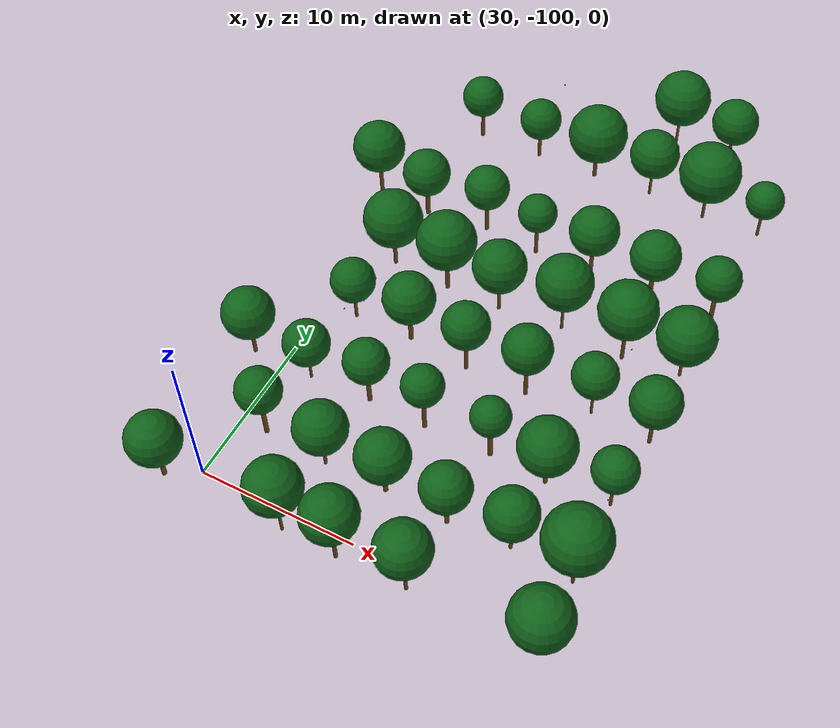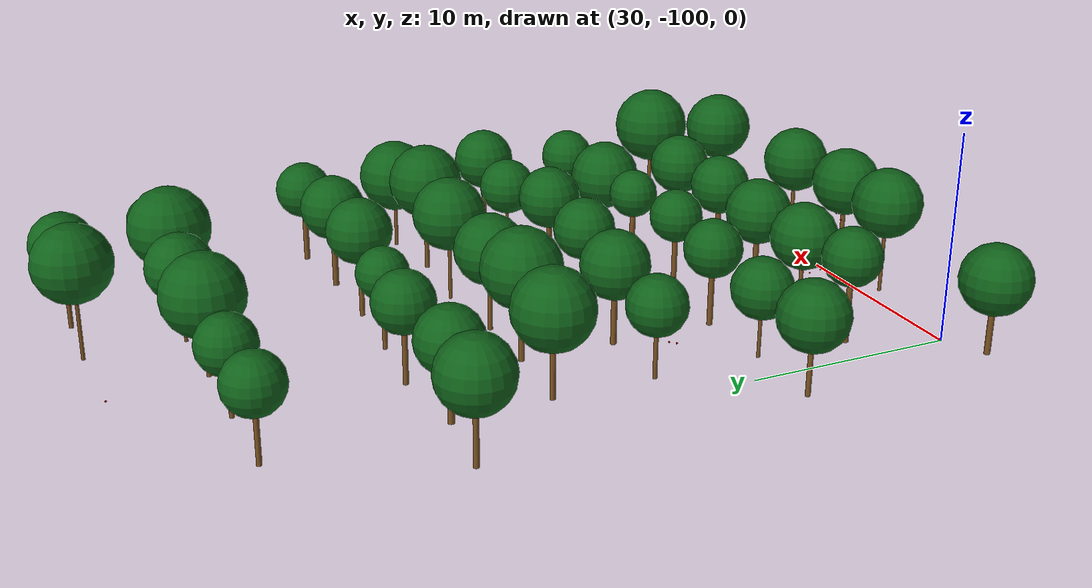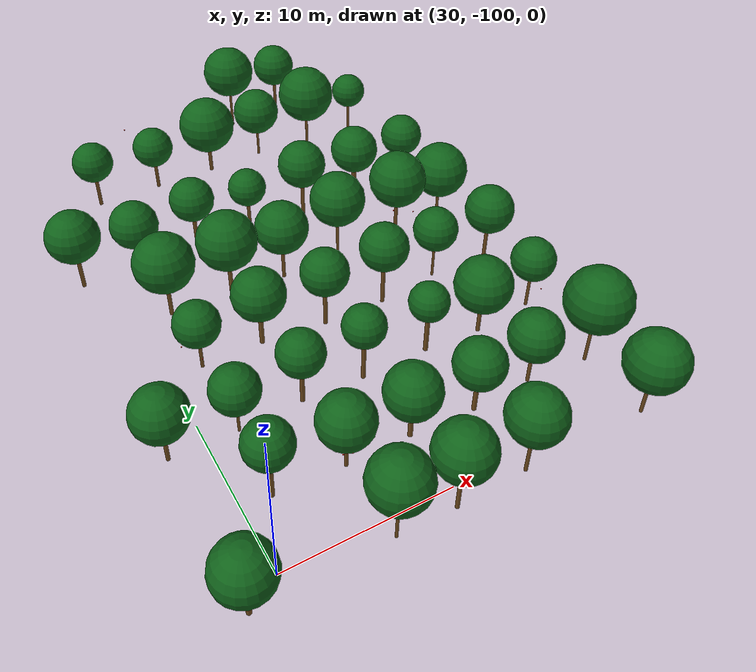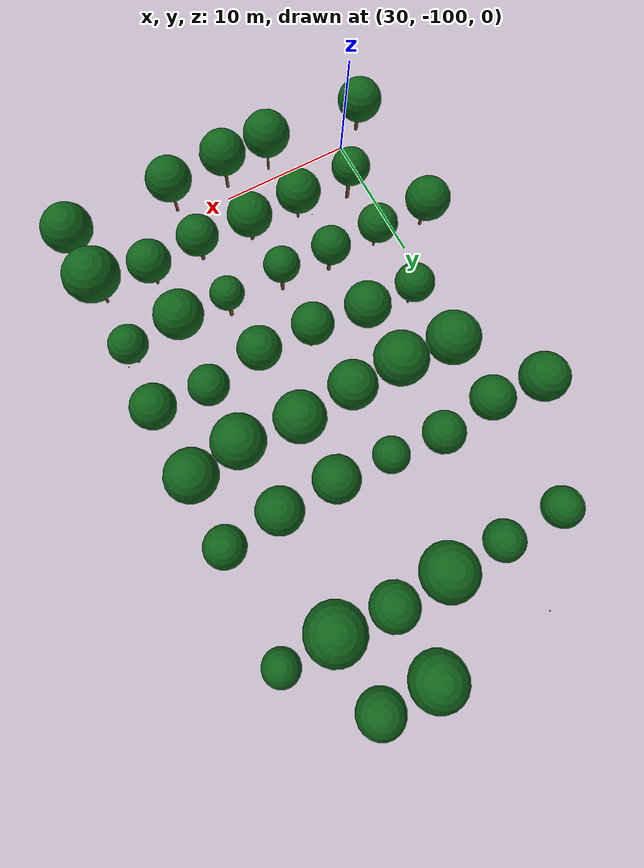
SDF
<sdf version="1.9">
 <world name="cheongsong_orchard">
  <model name="apple_tree_187">
   <static>true</static>
   <pose>28.08 -101.05 0 0 0 0</pose>
   <link name="link">
    <collision name="trunk_col">
     <pose>0 0 0.99 0 0 0</pose>
     <geometry><cylinder><radius>0.144</radius><length>1.99</length></cylinder></geometry>
    </collision>
    <visual name="trunk_vis">
     <pose>0 0 0.99 0 0 0</pose>
     <geometry><cylinder><radius>0.144</radius><length>1.99</length></cylinder></geometry>
     <material><ambient>0.35 0.22 0.08 1</ambient><diffuse>0.45 0.30 0.12 1</diffuse></material>
    </visual>
    <collision name="canopy_col">
     <pose>0 0 3.65 0 0 0</pose>
     <geometry><sphere><radius>1.66</radius></sphere></geometry>
    </collision>
    <visual name="canopy_vis">
     <pose>0 0 3.65 0 0 0</pose>
     <geometry><sphere><radius>1.66</radius></sphere></geometry>
     <material><ambient>0.04 0.28 0.06 1</ambient><diffuse>0.06 0.38 0.10 1</diffuse></material>
    </visual>
   </link>
  </model>
  <model name="apple_tree_189">
   <static>true</static>
   <pose>36.00 -100.99 0 0 0 0</pose>
   <link name="link">
    <collision name="trunk_col">
     <pose>0 0 1.45 0 0 0</pose>
     <geometry><cylinder><radius>0.086</radius><length>2.91</length></cylinder></geometry>
    </collision>
    <visual name="trunk_vis">
     <pose>0 0 1.45 0 0 0</pose>
     <geometry><cylinder><radius>0.086</radius><length>2.91</length></cylinder></geometry>
     <material><ambient>0.35 0.22 0.08 1</ambient><diffuse>0.45 0.30 0.12 1</diffuse></material>
    </visual>
    <collision name="canopy_col">
     <pose>0 0 4.62 0 0 0</pose>
     <geometry><sphere><radius>1.72</radius></sphere></geometry>
    </collision>
    <visual name="canopy_vis">
     <pose>0 0 4.62 0 0 0</pose>
     <geometry><sphere><radius>1.72</radius></sphere></geometry>
     <material><ambient>0.04 0.28 0.06 1</ambient><diffuse>0.06 0.38 0.10 1</diffuse></material>
    </visual>
   </link>
  </model>
  <model name="apple_tree_190">
   <static>true</static>
   <pose>39.53 -101.06 0 0 0 0</pose>
   <link name="link">
    <collision name="trunk_col">
     <pose>0 0 1.46 0 0 0</pose>
     <geometry><cylinder><radius>0.117</radius><length>2.92</length></cylinder></geometry>
    </collision>
    <visual name="trunk_vis">
     <pose>0 0 1.46 0 0 0</pose>
     <geometry><cylinder><radius>0.117</radius><length>2.92</length></cylinder></geometry>
     <material><ambient>0.35 0.22 0.08 1</ambient><diffuse>0.45 0.30 0.12 1</diffuse></material>
    </visual>
    <collision name="canopy_col">
     <pose>0 0 4.60 0 0 0</pose>
     <geometry><sphere><radius>1.69</radius></sphere></geometry>
    </collision>
    <visual name="canopy_vis">
     <pose>0 0 4.60 0 0 0</pose>
     <geometry><sphere><radius>1.69</radius></sphere></geometry>
     <material><ambient>0.04 0.28 0.06 1</ambient><diffuse>0.06 0.38 0.10 1</diffuse></material>
    </visual>
   </link>
  </model>
  <model name="apple_tree_191">
   <static>true</static>
   <pose>43.90 -100.95 0 0 0 0</pose>
   <link name="link">
    <collision name="trunk_col">
     <pose>0 0 1.40 0 0 0</pose>
     <geometry><cylinder><radius>0.103</radius><length>2.80</length></cylinder></geometry>
    </collision>
    <visual name="trunk_vis">
     <pose>0 0 1.40 0 0 0</pose>
     <geometry><cylinder><radius>0.103</radius><length>2.80</length></cylinder></geometry>
     <material><ambient>0.35 0.22 0.08 1</ambient><diffuse>0.45 0.30 0.12 1</diffuse></material>
    </visual>
    <collision name="canopy_col">
     <pose>0 0 4.47 0 0 0</pose>
     <geometry><sphere><radius>1.67</radius></sphere></geometry>
    </collision>
    <visual name="canopy_vis">
     <pose>0 0 4.47 0 0 0</pose>
     <geometry><sphere><radius>1.67</radius></sphere></geometry>
     <material><ambient>0.04 0.28 0.06 1</ambient><diffuse>0.06 0.38 0.10 1</diffuse></material>
    </visual>
   </link>
  </model>
  <model name="apple_tree_193">
   <static>true</static>
   <pose>51.87 -100.93 0 0 0 0</pose>
   <link name="link">
    <collision name="trunk_col">
     <pose>0 0 1.13 0 0 0</pose>
     <geometry><cylinder><radius>0.106</radius><length>2.25</length></cylinder></geometry>
    </collision>
    <visual name="trunk_vis">
     <pose>0 0 1.13 0 0 0</pose>
     <geometry><cylinder><radius>0.106</radius><length>2.25</length></cylinder></geometry>
     <material><ambient>0.35 0.22 0.08 1</ambient><diffuse>0.45 0.30 0.12 1</diffuse></material>
    </visual>
    <collision name="canopy_col">
     <pose>0 0 4.09 0 0 0</pose>
     <geometry><sphere><radius>1.83</radius></sphere></geometry>
    </collision>
    <visual name="canopy_vis">
     <pose>0 0 4.09 0 0 0</pose>
     <geometry><sphere><radius>1.83</radius></sphere></geometry>
     <material><ambient>0.04 0.28 0.06 1</ambient><diffuse>0.06 0.38 0.10 1</diffuse></material>
    </visual>
   </link>
  </model>
  <model name="apple_tree_239">
   <static>true</static>
   <pose>31.72 -95.92 0 0 0 0</pose>
   <link name="link">
    <collision name="trunk_col">
     <pose>0 0 1.41 0 0 0</pose>
     <geometry><cylinder><radius>0.139</radius><length>2.82</length></cylinder></geometry>
    </collision>
    <visual name="trunk_vis">
     <pose>0 0 1.41 0 0 0</pose>
     <geometry><cylinder><radius>0.139</radius><length>2.82</length></cylinder></geometry>
     <material><ambient>0.35 0.22 0.08 1</ambient><diffuse>0.45 0.30 0.12 1</diffuse></material>
    </visual>
    <collision name="canopy_col">
     <pose>0 0 4.22 0 0 0</pose>
     <geometry><sphere><radius>1.40</radius></sphere></geometry>
    </collision>
    <visual name="canopy_vis">
     <pose>0 0 4.22 0 0 0</pose>
     <geometry><sphere><radius>1.40</radius></sphere></geometry>
     <material><ambient>0.04 0.28 0.06 1</ambient><diffuse>0.06 0.38 0.10 1</diffuse></material>
    </visual>
   </link>
  </model>
  <model name="apple_tree_240">
   <static>true</static>
   <pose>35.89 -96.16 0 0 0 0</pose>
   <link name="link">
    <collision name="trunk_col">
     <pose>0 0 1.04 0 0 0</pose>
     <geometry><cylinder><radius>0.101</radius><length>2.07</length></cylinder></geometry>
    </collision>
    <visual name="trunk_vis">
     <pose>0 0 1.04 0 0 0</pose>
     <geometry><cylinder><radius>0.101</radius><length>2.07</length></cylinder></geometry>
     <material><ambient>0.35 0.22 0.08 1</ambient><diffuse>0.45 0.30 0.12 1</diffuse></material>
    </visual>
    <collision name="canopy_col">
     <pose>0 0 3.70 0 0 0</pose>
     <geometry><sphere><radius>1.63</radius></sphere></geometry>
    </collision>
    <visual name="canopy_vis">
     <pose>0 0 3.70 0 0 0</pose>
     <geometry><sphere><radius>1.63</radius></sphere></geometry>
     <material><ambient>0.04 0.28 0.06 1</ambient><diffuse>0.06 0.38 0.10 1</diffuse></material>
    </visual>
   </link>
  </model>
  <model name="apple_tree_241">
   <static>true</static>
   <pose>39.85 -96.12 0 0 0 0</pose>
   <link name="link">
    <collision name="trunk_col">
     <pose>0 0 0.99 0 0 0</pose>
     <geometry><cylinder><radius>0.142</radius><length>1.98</length></cylinder></geometry>
    </collision>
    <visual name="trunk_vis">
     <pose>0 0 0.99 0 0 0</pose>
     <geometry><cylinder><radius>0.142</radius><length>1.98</length></cylinder></geometry>
     <material><ambient>0.35 0.22 0.08 1</ambient><diffuse>0.45 0.30 0.12 1</diffuse></material>
    </visual>
    <collision name="canopy_col">
     <pose>0 0 3.62 0 0 0</pose>
     <geometry><sphere><radius>1.64</radius></sphere></geometry>
    </collision>
    <visual name="canopy_vis">
     <pose>0 0 3.62 0 0 0</pose>
     <geometry><sphere><radius>1.64</radius></sphere></geometry>
     <material><ambient>0.04 0.28 0.06 1</ambient><diffuse>0.06 0.38 0.10 1</diffuse></material>
    </visual>
   </link>
  </model>
  <model name="apple_tree_242">
   <static>true</static>
   <pose>43.90 -96.31 0 0 0 0</pose>
   <link name="link">
    <collision name="trunk_col">
     <pose>0 0 1.09 0 0 0</pose>
     <geometry><cylinder><radius>0.137</radius><length>2.19</length></cylinder></geometry>
    </collision>
    <visual name="trunk_vis">
     <pose>0 0 1.09 0 0 0</pose>
     <geometry><cylinder><radius>0.137</radius><length>2.19</length></cylinder></geometry>
     <material><ambient>0.35 0.22 0.08 1</ambient><diffuse>0.45 0.30 0.12 1</diffuse></material>
    </visual>
    <collision name="canopy_col">
     <pose>0 0 3.71 0 0 0</pose>
     <geometry><sphere><radius>1.52</radius></sphere></geometry>
    </collision>
    <visual name="canopy_vis">
     <pose>0 0 3.71 0 0 0</pose>
     <geometry><sphere><radius>1.52</radius></sphere></geometry>
     <material><ambient>0.04 0.28 0.06 1</ambient><diffuse>0.06 0.38 0.10 1</diffuse></material>
    </visual>
   </link>
  </model>
  <model name="apple_tree_243">
   <static>true</static>
   <pose>47.78 -96.08 0 0 0 0</pose>
   <link name="link">
    <collision name="trunk_col">
     <pose>0 0 1.05 0 0 0</pose>
     <geometry><cylinder><radius>0.109</radius><length>2.10</length></cylinder></geometry>
    </collision>
    <visual name="trunk_vis">
     <pose>0 0 1.05 0 0 0</pose>
     <geometry><cylinder><radius>0.109</radius><length>2.10</length></cylinder></geometry>
     <material><ambient>0.35 0.22 0.08 1</ambient><diffuse>0.45 0.30 0.12 1</diffuse></material>
    </visual>
    <collision name="canopy_col">
     <pose>0 0 3.68 0 0 0</pose>
     <geometry><sphere><radius>1.57</radius></sphere></geometry>
    </collision>
    <visual name="canopy_vis">
     <pose>0 0 3.68 0 0 0</pose>
     <geometry><sphere><radius>1.57</radius></sphere></geometry>
     <material><ambient>0.04 0.28 0.06 1</ambient><diffuse>0.06 0.38 0.10 1</diffuse></material>
    </visual>
   </link>
  </model>
  <model name="apple_tree_244">
   <static>true</static>
   <pose>51.71 -96.40 0 0 0 0</pose>
   <link name="link">
    <collision name="trunk_col">
     <pose>0 0 1.39 0 0 0</pose>
     <geometry><cylinder><radius>0.102</radius><length>2.79</length></cylinder></geometry>
    </collision>
    <visual name="trunk_vis">
     <pose>0 0 1.39 0 0 0</pose>
     <geometry><cylinder><radius>0.102</radius><length>2.79</length></cylinder></geometry>
     <material><ambient>0.35 0.22 0.08 1</ambient><diffuse>0.45 0.30 0.12 1</diffuse></material>
    </visual>
    <collision name="canopy_col">
     <pose>0 0 4.78 0 0 0</pose>
     <geometry><sphere><radius>1.99</radius></sphere></geometry>
    </collision>
    <visual name="canopy_vis">
     <pose>0 0 4.78 0 0 0</pose>
     <geometry><sphere><radius>1.99</radius></sphere></geometry>
     <material><ambient>0.04 0.28 0.06 1</ambient><diffuse>0.06 0.38 0.10 1</diffuse></material>
    </visual>
   </link>
  </model>
  <model name="apple_tree_294">
   <static>true</static>
   <pose>27.90 -91.28 0 0 0 0</pose>
   <link name="link">
    <collision name="trunk_col">
     <pose>0 0 1.06 0 0 0</pose>
     <geometry><cylinder><radius>0.118</radius><length>2.12</length></cylinder></geometry>
    </collision>
    <visual name="trunk_vis">
     <pose>0 0 1.06 0 0 0</pose>
     <geometry><cylinder><radius>0.118</radius><length>2.12</length></cylinder></geometry>
     <material><ambient>0.35 0.22 0.08 1</ambient><diffuse>0.45 0.30 0.12 1</diffuse></material>
    </visual>
    <collision name="canopy_col">
     <pose>0 0 3.75 0 0 0</pose>
     <geometry><sphere><radius>1.62</radius></sphere></geometry>
    </collision>
    <visual name="canopy_vis">
     <pose>0 0 3.75 0 0 0</pose>
     <geometry><sphere><radius>1.62</radius></sphere></geometry>
     <material><ambient>0.04 0.28 0.06 1</ambient><diffuse>0.06 0.38 0.10 1</diffuse></material>
    </visual>
   </link>
  </model>
  <model name="apple_tree_295">
   <static>true</static>
   <pose>31.95 -91.36 0 0 0 0</pose>
   <link name="link">
    <collision name="trunk_col">
     <pose>0 0 0.98 0 0 0</pose>
     <geometry><cylinder><radius>0.082</radius><length>1.95</length></cylinder></geometry>
    </collision>
    <visual name="trunk_vis">
     <pose>0 0 0.98 0 0 0</pose>
     <geometry><cylinder><radius>0.082</radius><length>1.95</length></cylinder></geometry>
     <material><ambient>0.35 0.22 0.08 1</ambient><diffuse>0.45 0.30 0.12 1</diffuse></material>
    </visual>
    <collision name="canopy_col">
     <pose>0 0 3.39 0 0 0</pose>
     <geometry><sphere><radius>1.44</radius></sphere></geometry>
    </collision>
    <visual name="canopy_vis">
     <pose>0 0 3.39 0 0 0</pose>
     <geometry><sphere><radius>1.44</radius></sphere></geometry>
     <material><ambient>0.04 0.28 0.06 1</ambient><diffuse>0.06 0.38 0.10 1</diffuse></material>
    </visual>
   </link>
  </model>
  <model name="apple_tree_296">
   <static>true</static>
   <pose>35.91 -91.16 0 0 0 0</pose>
   <link name="link">
    <collision name="trunk_col">
     <pose>0 0 1.23 0 0 0</pose>
     <geometry><cylinder><radius>0.138</radius><length>2.47</length></cylinder></geometry>
    </collision>
    <visual name="trunk_vis">
     <pose>0 0 1.23 0 0 0</pose>
     <geometry><cylinder><radius>0.138</radius><length>2.47</length></cylinder></geometry>
     <material><ambient>0.35 0.22 0.08 1</ambient><diffuse>0.45 0.30 0.12 1</diffuse></material>
    </visual>
    <collision name="canopy_col">
     <pose>0 0 3.87 0 0 0</pose>
     <geometry><sphere><radius>1.40</radius></sphere></geometry>
    </collision>
    <visual name="canopy_vis">
     <pose>0 0 3.87 0 0 0</pose>
     <geometry><sphere><radius>1.40</radius></sphere></geometry>
     <material><ambient>0.04 0.28 0.06 1</ambient><diffuse>0.06 0.38 0.10 1</diffuse></material>
    </visual>
   </link>
  </model>
  <model name="apple_tree_297">
   <static>true</static>
   <pose>39.72 -91.32 0 0 0 0</pose>
   <link name="link">
    <collision name="trunk_col">
     <pose>0 0 1.43 0 0 0</pose>
     <geometry><cylinder><radius>0.131</radius><length>2.86</length></cylinder></geometry>
    </collision>
    <visual name="trunk_vis">
     <pose>0 0 1.43 0 0 0</pose>
     <geometry><cylinder><radius>0.131</radius><length>2.86</length></cylinder></geometry>
     <material><ambient>0.35 0.22 0.08 1</ambient><diffuse>0.45 0.30 0.12 1</diffuse></material>
    </visual>
    <collision name="canopy_col">
     <pose>0 0 4.15 0 0 0</pose>
     <geometry><sphere><radius>1.29</radius></sphere></geometry>
    </collision>
    <visual name="canopy_vis">
     <pose>0 0 4.15 0 0 0</pose>
     <geometry><sphere><radius>1.29</radius></sphere></geometry>
     <material><ambient>0.04 0.28 0.06 1</ambient><diffuse>0.06 0.38 0.10 1</diffuse></material>
    </visual>
   </link>
  </model>
  <model name="apple_tree_298">
   <static>true</static>
   <pose>44.00 -91.24 0 0 0 0</pose>
   <link name="link">
    <collision name="trunk_col">
     <pose>0 0 1.35 0 0 0</pose>
     <geometry><cylinder><radius>0.142</radius><length>2.70</length></cylinder></geometry>
    </collision>
    <visual name="trunk_vis">
     <pose>0 0 1.35 0 0 0</pose>
     <geometry><cylinder><radius>0.142</radius><length>2.70</length></cylinder></geometry>
     <material><ambient>0.35 0.22 0.08 1</ambient><diffuse>0.45 0.30 0.12 1</diffuse></material>
    </visual>
    <collision name="canopy_col">
     <pose>0 0 3.91 0 0 0</pose>
     <geometry><sphere><radius>1.21</radius></sphere></geometry>
    </collision>
    <visual name="canopy_vis">
     <pose>0 0 3.91 0 0 0</pose>
     <geometry><sphere><radius>1.21</radius></sphere></geometry>
     <material><ambient>0.04 0.28 0.06 1</ambient><diffuse>0.06 0.38 0.10 1</diffuse></material>
    </visual>
   </link>
  </model>
  <model name="apple_tree_299">
   <static>true</static>
   <pose>47.63 -91.43 0 0 0 0</pose>
   <link name="link">
    <collision name="trunk_col">
     <pose>0 0 0.99 0 0 0</pose>
     <geometry><cylinder><radius>0.122</radius><length>1.98</length></cylinder></geometry>
    </collision>
    <visual name="trunk_vis">
     <pose>0 0 0.99 0 0 0</pose>
     <geometry><cylinder><radius>0.122</radius><length>1.98</length></cylinder></geometry>
     <material><ambient>0.35 0.22 0.08 1</ambient><diffuse>0.45 0.30 0.12 1</diffuse></material>
    </visual>
    <collision name="canopy_col">
     <pose>0 0 3.75 0 0 0</pose>
     <geometry><sphere><radius>1.76</radius></sphere></geometry>
    </collision>
    <visual name="canopy_vis">
     <pose>0 0 3.75 0 0 0</pose>
     <geometry><sphere><radius>1.76</radius></sphere></geometry>
     <material><ambient>0.04 0.28 0.06 1</ambient><diffuse>0.06 0.38 0.10 1</diffuse></material>
    </visual>
   </link>
  </model>
  <model name="apple_tree_300">
   <static>true</static>
   <pose>51.54 -91.05 0 0 0 0</pose>
   <link name="link">
    <collision name="trunk_col">
     <pose>0 0 1.17 0 0 0</pose>
     <geometry><cylinder><radius>0.096</radius><length>2.34</length></cylinder></geometry>
    </collision>
    <visual name="trunk_vis">
     <pose>0 0 1.17 0 0 0</pose>
     <geometry><cylinder><radius>0.096</radius><length>2.34</length></cylinder></geometry>
     <material><ambient>0.35 0.22 0.08 1</ambient><diffuse>0.45 0.30 0.12 1</diffuse></material>
    </visual>
    <collision name="canopy_col">
     <pose>0 0 3.72 0 0 0</pose>
     <geometry><sphere><radius>1.37</radius></sphere></geometry>
    </collision>
    <visual name="canopy_vis">
     <pose>0 0 3.72 0 0 0</pose>
     <geometry><sphere><radius>1.37</radius></sphere></geometry>
     <material><ambient>0.04 0.28 0.06 1</ambient><diffuse>0.06 0.38 0.10 1</diffuse></material>
    </visual>
   </link>
  </model>
  <model name="apple_tree_350">
   <static>true</static>
   <pose>31.99 -86.09 0 0 0 0</pose>
   <link name="link">
    <collision name="trunk_col">
     <pose>0 0 1.04 0 0 0</pose>
     <geometry><cylinder><radius>0.101</radius><length>2.09</length></cylinder></geometry>
    </collision>
    <visual name="trunk_vis">
     <pose>0 0 1.04 0 0 0</pose>
     <geometry><cylinder><radius>0.101</radius><length>2.09</length></cylinder></geometry>
     <material><ambient>0.35 0.22 0.08 1</ambient><diffuse>0.45 0.30 0.12 1</diffuse></material>
    </visual>
    <collision name="canopy_col">
     <pose>0 0 3.49 0 0 0</pose>
     <geometry><sphere><radius>1.40</radius></sphere></geometry>
    </collision>
    <visual name="canopy_vis">
     <pose>0 0 3.49 0 0 0</pose>
     <geometry><sphere><radius>1.40</radius></sphere></geometry>
     <material><ambient>0.04 0.28 0.06 1</ambient><diffuse>0.06 0.38 0.10 1</diffuse></material>
    </visual>
   </link>
  </model>
  <model name="apple_tree_351">
   <static>true</static>
   <pose>35.84 -86.02 0 0 0 0</pose>
   <link name="link">
    <collision name="trunk_col">
     <pose>0 0 1.15 0 0 0</pose>
     <geometry><cylinder><radius>0.143</radius><length>2.30</length></cylinder></geometry>
    </collision>
    <visual name="trunk_vis">
     <pose>0 0 1.15 0 0 0</pose>
     <geometry><cylinder><radius>0.143</radius><length>2.30</length></cylinder></geometry>
     <material><ambient>0.35 0.22 0.08 1</ambient><diffuse>0.45 0.30 0.12 1</diffuse></material>
    </visual>
    <collision name="canopy_col">
     <pose>0 0 3.93 0 0 0</pose>
     <geometry><sphere><radius>1.63</radius></sphere></geometry>
    </collision>
    <visual name="canopy_vis">
     <pose>0 0 3.93 0 0 0</pose>
     <geometry><sphere><radius>1.63</radius></sphere></geometry>
     <material><ambient>0.04 0.28 0.06 1</ambient><diffuse>0.06 0.38 0.10 1</diffuse></material>
    </visual>
   </link>
  </model>
  <model name="apple_tree_352">
   <static>true</static>
   <pose>39.89 -86.44 0 0 0 0</pose>
   <link name="link">
    <collision name="trunk_col">
     <pose>0 0 1.35 0 0 0</pose>
     <geometry><cylinder><radius>0.126</radius><length>2.70</length></cylinder></geometry>
    </collision>
    <visual name="trunk_vis">
     <pose>0 0 1.35 0 0 0</pose>
     <geometry><cylinder><radius>0.126</radius><length>2.70</length></cylinder></geometry>
     <material><ambient>0.35 0.22 0.08 1</ambient><diffuse>0.45 0.30 0.12 1</diffuse></material>
    </visual>
    <collision name="canopy_col">
     <pose>0 0 4.18 0 0 0</pose>
     <geometry><sphere><radius>1.48</radius></sphere></geometry>
    </collision>
    <visual name="canopy_vis">
     <pose>0 0 4.18 0 0 0</pose>
     <geometry><sphere><radius>1.48</radius></sphere></geometry>
     <material><ambient>0.04 0.28 0.06 1</ambient><diffuse>0.06 0.38 0.10 1</diffuse></material>
    </visual>
   </link>
  </model>
  <model name="apple_tree_353">
   <static>true</static>
   <pose>43.90 -86.46 0 0 0 0</pose>
   <link name="link">
    <collision name="trunk_col">
     <pose>0 0 1.45 0 0 0</pose>
     <geometry><cylinder><radius>0.127</radius><length>2.91</length></cylinder></geometry>
    </collision>
    <visual name="trunk_vis">
     <pose>0 0 1.45 0 0 0</pose>
     <geometry><cylinder><radius>0.127</radius><length>2.91</length></cylinder></geometry>
     <material><ambient>0.35 0.22 0.08 1</ambient><diffuse>0.45 0.30 0.12 1</diffuse></material>
    </visual>
    <collision name="canopy_col">
     <pose>0 0 4.43 0 0 0</pose>
     <geometry><sphere><radius>1.52</radius></sphere></geometry>
    </collision>
    <visual name="canopy_vis">
     <pose>0 0 4.43 0 0 0</pose>
     <geometry><sphere><radius>1.52</radius></sphere></geometry>
     <material><ambient>0.04 0.28 0.06 1</ambient><diffuse>0.06 0.38 0.10 1</diffuse></material>
    </visual>
   </link>
  </model>
  <model name="apple_tree_354">
   <static>true</static>
   <pose>47.96 -85.91 0 0 0 0</pose>
   <link name="link">
    <collision name="trunk_col">
     <pose>0 0 1.18 0 0 0</pose>
     <geometry><cylinder><radius>0.081</radius><length>2.37</length></cylinder></geometry>
    </collision>
    <visual name="trunk_vis">
     <pose>0 0 1.18 0 0 0</pose>
     <geometry><cylinder><radius>0.081</radius><length>2.37</length></cylinder></geometry>
     <material><ambient>0.35 0.22 0.08 1</ambient><diffuse>0.45 0.30 0.12 1</diffuse></material>
    </visual>
    <collision name="canopy_col">
     <pose>0 0 3.78 0 0 0</pose>
     <geometry><sphere><radius>1.41</radius></sphere></geometry>
    </collision>
    <visual name="canopy_vis">
     <pose>0 0 3.78 0 0 0</pose>
     <geometry><sphere><radius>1.41</radius></sphere></geometry>
     <material><ambient>0.04 0.28 0.06 1</ambient><diffuse>0.06 0.38 0.10 1</diffuse></material>
    </visual>
   </link>
  </model>
  <model name="apple_tree_355">
   <static>true</static>
   <pose>51.82 -86.18 0 0 0 0</pose>
   <link name="link">
    <collision name="trunk_col">
     <pose>0 0 1.26 0 0 0</pose>
     <geometry><cylinder><radius>0.120</radius><length>2.52</length></cylinder></geometry>
    </collision>
    <visual name="trunk_vis">
     <pose>0 0 1.26 0 0 0</pose>
     <geometry><cylinder><radius>0.120</radius><length>2.52</length></cylinder></geometry>
     <material><ambient>0.35 0.22 0.08 1</ambient><diffuse>0.45 0.30 0.12 1</diffuse></material>
    </visual>
    <collision name="canopy_col">
     <pose>0 0 4.07 0 0 0</pose>
     <geometry><sphere><radius>1.56</radius></sphere></geometry>
    </collision>
    <visual name="canopy_vis">
     <pose>0 0 4.07 0 0 0</pose>
     <geometry><sphere><radius>1.56</radius></sphere></geometry>
     <material><ambient>0.04 0.28 0.06 1</ambient><diffuse>0.06 0.38 0.10 1</diffuse></material>
    </visual>
   </link>
  </model>
  <model name="apple_tree_406">
   <static>true</static>
   <pose>32.00 -81.17 0 0 0 0</pose>
   <link name="link">
    <collision name="trunk_col">
     <pose>0 0 1.17 0 0 0</pose>
     <geometry><cylinder><radius>0.124</radius><length>2.33</length></cylinder></geometry>
    </collision>
    <visual name="trunk_vis">
     <pose>0 0 1.17 0 0 0</pose>
     <geometry><cylinder><radius>0.124</radius><length>2.33</length></cylinder></geometry>
     <material><ambient>0.35 0.22 0.08 1</ambient><diffuse>0.45 0.30 0.12 1</diffuse></material>
    </visual>
    <collision name="canopy_col">
     <pose>0 0 4.20 0 0 0</pose>
     <geometry><sphere><radius>1.87</radius></sphere></geometry>
    </collision>
    <visual name="canopy_vis">
     <pose>0 0 4.20 0 0 0</pose>
     <geometry><sphere><radius>1.87</radius></sphere></geometry>
     <material><ambient>0.04 0.28 0.06 1</ambient><diffuse>0.06 0.38 0.10 1</diffuse></material>
    </visual>
   </link>
  </model>
  <model name="apple_tree_407">
   <static>true</static>
   <pose>35.92 -81.45 0 0 0 0</pose>
   <link name="link">
    <collision name="trunk_col">
     <pose>0 0 1.32 0 0 0</pose>
     <geometry><cylinder><radius>0.131</radius><length>2.63</length></cylinder></geometry>
    </collision>
    <visual name="trunk_vis">
     <pose>0 0 1.32 0 0 0</pose>
     <geometry><cylinder><radius>0.131</radius><length>2.63</length></cylinder></geometry>
     <material><ambient>0.35 0.22 0.08 1</ambient><diffuse>0.45 0.30 0.12 1</diffuse></material>
    </visual>
    <collision name="canopy_col">
     <pose>0 0 4.51 0 0 0</pose>
     <geometry><sphere><radius>1.88</radius></sphere></geometry>
    </collision>
    <visual name="canopy_vis">
     <pose>0 0 4.51 0 0 0</pose>
     <geometry><sphere><radius>1.88</radius></sphere></geometry>
     <material><ambient>0.04 0.28 0.06 1</ambient><diffuse>0.06 0.38 0.10 1</diffuse></material>
    </visual>
   </link>
  </model>
  <model name="apple_tree_408">
   <static>true</static>
   <pose>39.55 -81.44 0 0 0 0</pose>
   <link name="link">
    <collision name="trunk_col">
     <pose>0 0 1.19 0 0 0</pose>
     <geometry><cylinder><radius>0.112</radius><length>2.37</length></cylinder></geometry>
    </collision>
    <visual name="trunk_vis">
     <pose>0 0 1.19 0 0 0</pose>
     <geometry><cylinder><radius>0.112</radius><length>2.37</length></cylinder></geometry>
     <material><ambient>0.35 0.22 0.08 1</ambient><diffuse>0.45 0.30 0.12 1</diffuse></material>
    </visual>
    <collision name="canopy_col">
     <pose>0 0 4.06 0 0 0</pose>
     <geometry><sphere><radius>1.69</radius></sphere></geometry>
    </collision>
    <visual name="canopy_vis">
     <pose>0 0 4.06 0 0 0</pose>
     <geometry><sphere><radius>1.69</radius></sphere></geometry>
     <material><ambient>0.04 0.28 0.06 1</ambient><diffuse>0.06 0.38 0.10 1</diffuse></material>
    </visual>
   </link>
  </model>
  <model name="apple_tree_409">
   <static>true</static>
   <pose>43.70 -81.04 0 0 0 0</pose>
   <link name="link">
    <collision name="trunk_col">
     <pose>0 0 1.34 0 0 0</pose>
     <geometry><cylinder><radius>0.088</radius><length>2.67</length></cylinder></geometry>
    </collision>
    <visual name="trunk_vis">
     <pose>0 0 1.34 0 0 0</pose>
     <geometry><cylinder><radius>0.088</radius><length>2.67</length></cylinder></geometry>
     <material><ambient>0.35 0.22 0.08 1</ambient><diffuse>0.45 0.30 0.12 1</diffuse></material>
    </visual>
    <collision name="canopy_col">
     <pose>0 0 4.44 0 0 0</pose>
     <geometry><sphere><radius>1.77</radius></sphere></geometry>
    </collision>
    <visual name="canopy_vis">
     <pose>0 0 4.44 0 0 0</pose>
     <geometry><sphere><radius>1.77</radius></sphere></geometry>
     <material><ambient>0.04 0.28 0.06 1</ambient><diffuse>0.06 0.38 0.10 1</diffuse></material>
    </visual>
   </link>
  </model>
  <model name="apple_tree_410">
   <static>true</static>
   <pose>47.93 -81.39 0 0 0 0</pose>
   <link name="link">
    <collision name="trunk_col">
     <pose>0 0 1.44 0 0 0</pose>
     <geometry><cylinder><radius>0.117</radius><length>2.88</length></cylinder></geometry>
    </collision>
    <visual name="trunk_vis">
     <pose>0 0 1.44 0 0 0</pose>
     <geometry><cylinder><radius>0.117</radius><length>2.88</length></cylinder></geometry>
     <material><ambient>0.35 0.22 0.08 1</ambient><diffuse>0.45 0.30 0.12 1</diffuse></material>
    </visual>
    <collision name="canopy_col">
     <pose>0 0 4.71 0 0 0</pose>
     <geometry><sphere><radius>1.83</radius></sphere></geometry>
    </collision>
    <visual name="canopy_vis">
     <pose>0 0 4.71 0 0 0</pose>
     <geometry><sphere><radius>1.83</radius></sphere></geometry>
     <material><ambient>0.04 0.28 0.06 1</ambient><diffuse>0.06 0.38 0.10 1</diffuse></material>
    </visual>
   </link>
  </model>
  <model name="apple_tree_411">
   <static>true</static>
   <pose>51.54 -80.97 0 0 0 0</pose>
   <link name="link">
    <collision name="trunk_col">
     <pose>0 0 1.06 0 0 0</pose>
     <geometry><cylinder><radius>0.091</radius><length>2.11</length></cylinder></geometry>
    </collision>
    <visual name="trunk_vis">
     <pose>0 0 1.06 0 0 0</pose>
     <geometry><cylinder><radius>0.091</radius><length>2.11</length></cylinder></geometry>
     <material><ambient>0.35 0.22 0.08 1</ambient><diffuse>0.45 0.30 0.12 1</diffuse></material>
    </visual>
    <collision name="canopy_col">
     <pose>0 0 3.93 0 0 0</pose>
     <geometry><sphere><radius>1.82</radius></sphere></geometry>
    </collision>
    <visual name="canopy_vis">
     <pose>0 0 3.93 0 0 0</pose>
     <geometry><sphere><radius>1.82</radius></sphere></geometry>
     <material><ambient>0.04 0.28 0.06 1</ambient><diffuse>0.06 0.38 0.10 1</diffuse></material>
    </visual>
   </link>
  </model>
  <model name="apple_tree_463">
   <static>true</static>
   <pose>28.05 -76.07 0 0 0 0</pose>
   <link name="link">
    <collision name="trunk_col">
     <pose>0 0 1.19 0 0 0</pose>
     <geometry><cylinder><radius>0.126</radius><length>2.37</length></cylinder></geometry>
    </collision>
    <visual name="trunk_vis">
     <pose>0 0 1.19 0 0 0</pose>
     <geometry><cylinder><radius>0.126</radius><length>2.37</length></cylinder></geometry>
     <material><ambient>0.35 0.22 0.08 1</ambient><diffuse>0.45 0.30 0.12 1</diffuse></material>
    </visual>
    <collision name="canopy_col">
     <pose>0 0 4.06 0 0 0</pose>
     <geometry><sphere><radius>1.69</radius></sphere></geometry>
    </collision>
    <visual name="canopy_vis">
     <pose>0 0 4.06 0 0 0</pose>
     <geometry><sphere><radius>1.69</radius></sphere></geometry>
     <material><ambient>0.04 0.28 0.06 1</ambient><diffuse>0.06 0.38 0.10 1</diffuse></material>
    </visual>
   </link>
  </model>
  <model name="apple_tree_464">
   <static>true</static>
   <pose>31.77 -76.46 0 0 0 0</pose>
   <link name="link">
    <collision name="trunk_col">
     <pose>0 0 1.14 0 0 0</pose>
     <geometry><cylinder><radius>0.148</radius><length>2.27</length></cylinder></geometry>
    </collision>
    <visual name="trunk_vis">
     <pose>0 0 1.14 0 0 0</pose>
     <geometry><cylinder><radius>0.148</radius><length>2.27</length></cylinder></geometry>
     <material><ambient>0.35 0.22 0.08 1</ambient><diffuse>0.45 0.30 0.12 1</diffuse></material>
    </visual>
    <collision name="canopy_col">
     <pose>0 0 3.80 0 0 0</pose>
     <geometry><sphere><radius>1.53</radius></sphere></geometry>
    </collision>
    <visual name="canopy_vis">
     <pose>0 0 3.80 0 0 0</pose>
     <geometry><sphere><radius>1.53</radius></sphere></geometry>
     <material><ambient>0.04 0.28 0.06 1</ambient><diffuse>0.06 0.38 0.10 1</diffuse></material>
    </visual>
   </link>
  </model>
  <model name="apple_tree_465">
   <static>true</static>
   <pose>35.84 -75.93 0 0 0 0</pose>
   <link name="link">
    <collision name="trunk_col">
     <pose>0 0 1.24 0 0 0</pose>
     <geometry><cylinder><radius>0.126</radius><length>2.48</length></cylinder></geometry>
    </collision>
    <visual name="trunk_vis">
     <pose>0 0 1.24 0 0 0</pose>
     <geometry><cylinder><radius>0.126</radius><length>2.48</length></cylinder></geometry>
     <material><ambient>0.35 0.22 0.08 1</ambient><diffuse>0.45 0.30 0.12 1</diffuse></material>
    </visual>
    <collision name="canopy_col">
     <pose>0 0 3.91 0 0 0</pose>
     <geometry><sphere><radius>1.44</radius></sphere></geometry>
    </collision>
    <visual name="canopy_vis">
     <pose>0 0 3.91 0 0 0</pose>
     <geometry><sphere><radius>1.44</radius></sphere></geometry>
     <material><ambient>0.04 0.28 0.06 1</ambient><diffuse>0.06 0.38 0.10 1</diffuse></material>
    </visual>
   </link>
  </model>
  <model name="apple_tree_466">
   <static>true</static>
   <pose>39.57 -76.25 0 0 0 0</pose>
   <link name="link">
    <collision name="trunk_col">
     <pose>0 0 1.24 0 0 0</pose>
     <geometry><cylinder><radius>0.114</radius><length>2.49</length></cylinder></geometry>
    </collision>
    <visual name="trunk_vis">
     <pose>0 0 1.24 0 0 0</pose>
     <geometry><cylinder><radius>0.114</radius><length>2.49</length></cylinder></geometry>
     <material><ambient>0.35 0.22 0.08 1</ambient><diffuse>0.45 0.30 0.12 1</diffuse></material>
    </visual>
    <collision name="canopy_col">
     <pose>0 0 3.73 0 0 0</pose>
     <geometry><sphere><radius>1.24</radius></sphere></geometry>
    </collision>
    <visual name="canopy_vis">
     <pose>0 0 3.73 0 0 0</pose>
     <geometry><sphere><radius>1.24</radius></sphere></geometry>
     <material><ambient>0.04 0.28 0.06 1</ambient><diffuse>0.06 0.38 0.10 1</diffuse></material>
    </visual>
   </link>
  </model>
  <model name="apple_tree_467">
   <static>true</static>
   <pose>43.51 -76.44 0 0 0 0</pose>
   <link name="link">
    <collision name="trunk_col">
     <pose>0 0 1.38 0 0 0</pose>
     <geometry><cylinder><radius>0.124</radius><length>2.75</length></cylinder></geometry>
    </collision>
    <visual name="trunk_vis">
     <pose>0 0 1.38 0 0 0</pose>
     <geometry><cylinder><radius>0.124</radius><length>2.75</length></cylinder></geometry>
     <material><ambient>0.35 0.22 0.08 1</ambient><diffuse>0.45 0.30 0.12 1</diffuse></material>
    </visual>
    <collision name="canopy_col">
     <pose>0 0 4.34 0 0 0</pose>
     <geometry><sphere><radius>1.58</radius></sphere></geometry>
    </collision>
    <visual name="canopy_vis">
     <pose>0 0 4.34 0 0 0</pose>
     <geometry><sphere><radius>1.58</radius></sphere></geometry>
     <material><ambient>0.04 0.28 0.06 1</ambient><diffuse>0.06 0.38 0.10 1</diffuse></material>
    </visual>
   </link>
  </model>
  <model name="apple_tree_468">
   <static>true</static>
   <pose>47.57 -76.37 0 0 0 0</pose>
   <link name="link">
    <collision name="trunk_col">
     <pose>0 0 1.29 0 0 0</pose>
     <geometry><cylinder><radius>0.148</radius><length>2.57</length></cylinder></geometry>
    </collision>
    <visual name="trunk_vis">
     <pose>0 0 1.29 0 0 0</pose>
     <geometry><cylinder><radius>0.148</radius><length>2.57</length></cylinder></geometry>
     <material><ambient>0.35 0.22 0.08 1</ambient><diffuse>0.45 0.30 0.12 1</diffuse></material>
    </visual>
    <collision name="canopy_col">
     <pose>0 0 4.15 0 0 0</pose>
     <geometry><sphere><radius>1.58</radius></sphere></geometry>
    </collision>
    <visual name="canopy_vis">
     <pose>0 0 4.15 0 0 0</pose>
     <geometry><sphere><radius>1.58</radius></sphere></geometry>
     <material><ambient>0.04 0.28 0.06 1</ambient><diffuse>0.06 0.38 0.10 1</diffuse></material>
    </visual>
   </link>
  </model>
  <model name="apple_tree_469">
   <static>true</static>
   <pose>51.58 -76.02 0 0 0 0</pose>
   <link name="link">
    <collision name="trunk_col">
     <pose>0 0 1.20 0 0 0</pose>
     <geometry><cylinder><radius>0.143</radius><length>2.41</length></cylinder></geometry>
    </collision>
    <visual name="trunk_vis">
     <pose>0 0 1.20 0 0 0</pose>
     <geometry><cylinder><radius>0.143</radius><length>2.41</length></cylinder></geometry>
     <material><ambient>0.35 0.22 0.08 1</ambient><diffuse>0.45 0.30 0.12 1</diffuse></material>
    </visual>
    <collision name="canopy_col">
     <pose>0 0 3.82 0 0 0</pose>
     <geometry><sphere><radius>1.41</radius></sphere></geometry>
    </collision>
    <visual name="canopy_vis">
     <pose>0 0 3.82 0 0 0</pose>
     <geometry><sphere><radius>1.41</radius></sphere></geometry>
     <material><ambient>0.04 0.28 0.06 1</ambient><diffuse>0.06 0.38 0.10 1</diffuse></material>
    </visual>
   </link>
  </model>
  <model name="apple_tree_523">
   <static>true</static>
   <pose>31.63 -68.37 0 0 0 0</pose>
   <link name="link">
    <collision name="trunk_col">
     <pose>0 0 1.10 0 0 0</pose>
     <geometry><cylinder><radius>0.117</radius><length>2.21</length></cylinder></geometry>
    </collision>
    <visual name="trunk_vis">
     <pose>0 0 1.10 0 0 0</pose>
     <geometry><cylinder><radius>0.117</radius><length>2.21</length></cylinder></geometry>
     <material><ambient>0.35 0.22 0.08 1</ambient><diffuse>0.45 0.30 0.12 1</diffuse></material>
    </visual>
    <collision name="canopy_col">
     <pose>0 0 3.57 0 0 0</pose>
     <geometry><sphere><radius>1.36</radius></sphere></geometry>
    </collision>
    <visual name="canopy_vis">
     <pose>0 0 3.57 0 0 0</pose>
     <geometry><sphere><radius>1.36</radius></sphere></geometry>
     <material><ambient>0.04 0.28 0.06 1</ambient><diffuse>0.06 0.38 0.10 1</diffuse></material>
    </visual>
   </link>
  </model>
  <model name="apple_tree_524">
   <static>true</static>
   <pose>35.93 -68.31 0 0 0 0</pose>
   <link name="link">
    <collision name="trunk_col">
     <pose>0 0 0.99 0 0 0</pose>
     <geometry><cylinder><radius>0.115</radius><length>1.99</length></cylinder></geometry>
    </collision>
    <visual name="trunk_vis">
     <pose>0 0 0.99 0 0 0</pose>
     <geometry><cylinder><radius>0.115</radius><length>1.99</length></cylinder></geometry>
     <material><ambient>0.35 0.22 0.08 1</ambient><diffuse>0.45 0.30 0.12 1</diffuse></material>
    </visual>
    <collision name="canopy_col">
     <pose>0 0 3.35 0 0 0</pose>
     <geometry><sphere><radius>1.37</radius></sphere></geometry>
    </collision>
    <visual name="canopy_vis">
     <pose>0 0 3.35 0 0 0</pose>
     <geometry><sphere><radius>1.37</radius></sphere></geometry>
     <material><ambient>0.04 0.28 0.06 1</ambient><diffuse>0.06 0.38 0.10 1</diffuse></material>
    </visual>
   </link>
  </model>
  <model name="apple_tree_525">
   <static>true</static>
   <pose>40.07 -68.29 0 0 0 0</pose>
   <link name="link">
    <collision name="trunk_col">
     <pose>0 0 0.98 0 0 0</pose>
     <geometry><cylinder><radius>0.127</radius><length>1.95</length></cylinder></geometry>
    </collision>
    <visual name="trunk_vis">
     <pose>0 0 0.98 0 0 0</pose>
     <geometry><cylinder><radius>0.127</radius><length>1.95</length></cylinder></geometry>
     <material><ambient>0.35 0.22 0.08 1</ambient><diffuse>0.45 0.30 0.12 1</diffuse></material>
    </visual>
    <collision name="canopy_col">
     <pose>0 0 3.88 0 0 0</pose>
     <geometry><sphere><radius>1.93</radius></sphere></geometry>
    </collision>
    <visual name="canopy_vis">
     <pose>0 0 3.88 0 0 0</pose>
     <geometry><sphere><radius>1.93</radius></sphere></geometry>
     <material><ambient>0.04 0.28 0.06 1</ambient><diffuse>0.06 0.38 0.10 1</diffuse></material>
    </visual>
   </link>
  </model>
  <model name="apple_tree_526">
   <static>true</static>
   <pose>44.01 -68.09 0 0 0 0</pose>
   <link name="link">
    <collision name="trunk_col">
     <pose>0 0 1.05 0 0 0</pose>
     <geometry><cylinder><radius>0.086</radius><length>2.10</length></cylinder></geometry>
    </collision>
    <visual name="trunk_vis">
     <pose>0 0 1.05 0 0 0</pose>
     <geometry><cylinder><radius>0.086</radius><length>2.10</length></cylinder></geometry>
     <material><ambient>0.35 0.22 0.08 1</ambient><diffuse>0.45 0.30 0.12 1</diffuse></material>
    </visual>
    <collision name="canopy_col">
     <pose>0 0 3.70 0 0 0</pose>
     <geometry><sphere><radius>1.61</radius></sphere></geometry>
    </collision>
    <visual name="canopy_vis">
     <pose>0 0 3.70 0 0 0</pose>
     <geometry><sphere><radius>1.61</radius></sphere></geometry>
     <material><ambient>0.04 0.28 0.06 1</ambient><diffuse>0.06 0.38 0.10 1</diffuse></material>
    </visual>
   </link>
  </model>
  <model name="apple_tree_527">
   <static>true</static>
   <pose>47.94 -68.43 0 0 0 0</pose>
   <link name="link">
    <collision name="trunk_col">
     <pose>0 0 1.10 0 0 0</pose>
     <geometry><cylinder><radius>0.096</radius><length>2.20</length></cylinder></geometry>
    </collision>
    <visual name="trunk_vis">
     <pose>0 0 1.10 0 0 0</pose>
     <geometry><cylinder><radius>0.096</radius><length>2.20</length></cylinder></geometry>
     <material><ambient>0.35 0.22 0.08 1</ambient><diffuse>0.45 0.30 0.12 1</diffuse></material>
    </visual>
    <collision name="canopy_col">
     <pose>0 0 4.19 0 0 0</pose>
     <geometry><sphere><radius>1.99</radius></sphere></geometry>
    </collision>
    <visual name="canopy_vis">
     <pose>0 0 4.19 0 0 0</pose>
     <geometry><sphere><radius>1.99</radius></sphere></geometry>
     <material><ambient>0.04 0.28 0.06 1</ambient><diffuse>0.06 0.38 0.10 1</diffuse></material>
    </visual>
   </link>
  </model>
  <model name="apple_tree_528">
   <static>true</static>
   <pose>51.69 -68.21 0 0 0 0</pose>
   <link name="link">
    <collision name="trunk_col">
     <pose>0 0 1.02 0 0 0</pose>
     <geometry><cylinder><radius>0.092</radius><length>2.05</length></cylinder></geometry>
    </collision>
    <visual name="trunk_vis">
     <pose>0 0 1.02 0 0 0</pose>
     <geometry><cylinder><radius>0.092</radius><length>2.05</length></cylinder></geometry>
     <material><ambient>0.35 0.22 0.08 1</ambient><diffuse>0.45 0.30 0.12 1</diffuse></material>
    </visual>
    <collision name="canopy_col">
     <pose>0 0 3.28 0 0 0</pose>
     <geometry><sphere><radius>1.23</radius></sphere></geometry>
    </collision>
    <visual name="canopy_vis">
     <pose>0 0 3.28 0 0 0</pose>
     <geometry><sphere><radius>1.23</radius></sphere></geometry>
     <material><ambient>0.04 0.28 0.06 1</ambient><diffuse>0.06 0.38 0.10 1</diffuse></material>
    </visual>
   </link>
  </model>
  <model name="apple_tree_582">
   <static>true</static>
   <pose>43.93 -63.45 0 0 0 0</pose>
   <link name="link">
    <collision name="trunk_col">
     <pose>0 0 1.43 0 0 0</pose>
     <geometry><cylinder><radius>0.087</radius><length>2.85</length></cylinder></geometry>
    </collision>
    <visual name="trunk_vis">
     <pose>0 0 1.43 0 0 0</pose>
     <geometry><cylinder><radius>0.087</radius><length>2.85</length></cylinder></geometry>
     <material><ambient>0.35 0.22 0.08 1</ambient><diffuse>0.45 0.30 0.12 1</diffuse></material>
    </visual>
    <collision name="canopy_col">
     <pose>0 0 4.68 0 0 0</pose>
     <geometry><sphere><radius>1.83</radius></sphere></geometry>
    </collision>
    <visual name="canopy_vis">
     <pose>0 0 4.68 0 0 0</pose>
     <geometry><sphere><radius>1.83</radius></sphere></geometry>
     <material><ambient>0.04 0.28 0.06 1</ambient><diffuse>0.06 0.38 0.10 1</diffuse></material>
    </visual>
   </link>
  </model>
  <model name="apple_tree_583">
   <static>true</static>
   <pose>47.69 -63.44 0 0 0 0</pose>
   <link name="link">
    <collision name="trunk_col">
     <pose>0 0 1.35 0 0 0</pose>
     <geometry><cylinder><radius>0.111</radius><length>2.70</length></cylinder></geometry>
    </collision>
    <visual name="trunk_vis">
     <pose>0 0 1.35 0 0 0</pose>
     <geometry><cylinder><radius>0.111</radius><length>2.70</length></cylinder></geometry>
     <material><ambient>0.35 0.22 0.08 1</ambient><diffuse>0.45 0.30 0.12 1</diffuse></material>
    </visual>
    <collision name="canopy_col">
     <pose>0 0 4.21 0 0 0</pose>
     <geometry><sphere><radius>1.52</radius></sphere></geometry>
    </collision>
    <visual name="canopy_vis">
     <pose>0 0 4.21 0 0 0</pose>
     <geometry><sphere><radius>1.52</radius></sphere></geometry>
     <material><ambient>0.04 0.28 0.06 1</ambient><diffuse>0.06 0.38 0.10 1</diffuse></material>
    </visual>
   </link>
  </model>
  <model name="apple_190_0">
   <static>true</static>
   <pose>39.12 -100.64 2.72 0 0 0</pose>
   <link name="link">
    <visual name="visual">
     <geometry><sphere><radius>0.04</radius></sphere></geometry>
     <material><ambient>0.7 0.05 0.02 1</ambient><diffuse>0.9 0.10 0.05 1</diffuse></material>
    </visual>
   </link>
  </model>
  <model name="apple_190_1">
   <static>true</static>
   <pose>39.04 -100.28 3.17 0 0 0</pose>
   <link name="link">
    <visual name="visual">
     <geometry><sphere><radius>0.04</radius></sphere></geometry>
     <material><ambient>0.7 0.05 0.02 1</ambient><diffuse>0.9 0.10 0.05 1</diffuse></material>
    </visual>
   </link>
  </model>
  <model name="apple_240_0">
   <static>true</static>
   <pose>35.33 -96.85 2.08 0 0 0</pose>
   <link name="link">
    <visual name="visual">
     <geometry><sphere><radius>0.04</radius></sphere></geometry>
     <material><ambient>0.7 0.05 0.02 1</ambient><diffuse>0.9 0.10 0.05 1</diffuse></material>
    </visual>
   </link>
  </model>
  <model name="apple_240_1">
   <static>true</static>
   <pose>36.33 -95.34 2.45 0 0 0</pose>
   <link name="link">
    <visual name="visual">
     <geometry><sphere><radius>0.04</radius></sphere></geometry>
     <material><ambient>0.7 0.05 0.02 1</ambient><diffuse>0.9 0.10 0.05 1</diffuse></material>
    </visual>
   </link>
  </model>
  <model name="apple_240_2">
   <static>true</static>
   <pose>35.25 -95.11 1.47 0 0 0</pose>
   <link name="link">
    <visual name="visual">
     <geometry><sphere><radius>0.04</radius></sphere></geometry>
     <material><ambient>0.7 0.05 0.02 1</ambient><diffuse>0.9 0.10 0.05 1</diffuse></material>
    </visual>
   </link>
  </model>
  <model name="apple_240_3">
   <static>true</static>
   <pose>36.14 -96.45 2.50 0 0 0</pose>
   <link name="link">
    <visual name="visual">
     <geometry><sphere><radius>0.04</radius></sphere></geometry>
     <material><ambient>0.7 0.05 0.02 1</ambient><diffuse>0.9 0.10 0.05 1</diffuse></material>
    </visual>
   </link>
  </model>
  <model name="apple_240_4">
   <static>true</static>
   <pose>35.97 -96.72 1.66 0 0 0</pose>
   <link name="link">
    <visual name="visual">
     <geometry><sphere><radius>0.04</radius></sphere></geometry>
     <material><ambient>0.7 0.05 0.02 1</ambient><diffuse>0.9 0.10 0.05 1</diffuse></material>
    </visual>
   </link>
  </model>
  <model name="apple_300_0">
   <static>true</static>
   <pose>52.24 -90.20 2.02 0 0 0</pose>
   <link name="link">
    <visual name="visual">
     <geometry><sphere><radius>0.04</radius></sphere></geometry>
     <material><ambient>0.7 0.05 0.02 1</ambient><diffuse>0.9 0.10 0.05 1</diffuse></material>
    </visual>
   </link>
  </model>
  <model name="apple_300_1">
   <static>true</static>
   <pose>52.20 -91.43 2.35 0 0 0</pose>
   <link name="link">
    <visual name="visual">
     <geometry><sphere><radius>0.04</radius></sphere></geometry>
     <material><ambient>0.7 0.05 0.02 1</ambient><diffuse>0.9 0.10 0.05 1</diffuse></material>
    </visual>
   </link>
  </model>
  <model name="apple_300_2">
   <static>true</static>
   <pose>51.67 -91.99 2.02 0 0 0</pose>
   <link name="link">
    <visual name="visual">
     <geometry><sphere><radius>0.04</radius></sphere></geometry>
     <material><ambient>0.7 0.05 0.02 1</ambient><diffuse>0.9 0.10 0.05 1</diffuse></material>
    </visual>
   </link>
  </model>
  <model name="apple_350_0">
   <static>true</static>
   <pose>31.78 -87.01 1.60 0 0 0</pose>
   <link name="link">
    <visual name="visual">
     <geometry><sphere><radius>0.04</radius></sphere></geometry>
     <material><ambient>0.7 0.05 0.02 1</ambient><diffuse>0.9 0.10 0.05 1</diffuse></material>
    </visual>
   </link>
  </model>
  <model name="apple_350_1">
   <static>true</static>
   <pose>32.68 -86.13 1.92 0 0 0</pose>
   <link name="link">
    <visual name="visual">
     <geometry><sphere><radius>0.04</radius></sphere></geometry>
     <material><ambient>0.7 0.05 0.02 1</ambient><diffuse>0.9 0.10 0.05 1</diffuse></material>
    </visual>
   </link>
  </model>
  <model name="apple_350_2">
   <static>true</static>
   <pose>30.93 -86.13 2.20 0 0 0</pose>
   <link name="link">
    <visual name="visual">
     <geometry><sphere><radius>0.04</radius></sphere></geometry>
     <material><ambient>0.7 0.05 0.02 1</ambient><diffuse>0.9 0.10 0.05 1</diffuse></material>
    </visual>
   </link>
  </model>
  <model name="apple_410_0">
   <static>true</static>
   <pose>47.89 -80.66 3.11 0 0 0</pose>
   <link name="link">
    <visual name="visual">
     <geometry><sphere><radius>0.04</radius></sphere></geometry>
     <material><ambient>0.7 0.05 0.02 1</ambient><diffuse>0.9 0.10 0.05 1</diffuse></material>
    </visual>
   </link>
  </model>
  <model name="apple_410_1">
   <static>true</static>
   <pose>48.74 -82.21 2.30 0 0 0</pose>
   <link name="link">
    <visual name="visual">
     <geometry><sphere><radius>0.04</radius></sphere></geometry>
     <material><ambient>0.7 0.05 0.02 1</ambient><diffuse>0.9 0.10 0.05 1</diffuse></material>
    </visual>
   </link>
  </model>
  <model name="apple_410_2">
   <static>true</static>
   <pose>48.49 -81.80 2.70 0 0 0</pose>
   <link name="link">
    <visual name="visual">
     <geometry><sphere><radius>0.04</radius></sphere></geometry>
     <material><ambient>0.7 0.05 0.02 1</ambient><diffuse>0.9 0.10 0.05 1</diffuse></material>
    </visual>
   </link>
  </model>
  <model name="apple_410_3">
   <static>true</static>
   <pose>47.33 -81.48 3.40 0 0 0</pose>
   <link name="link">
    <visual name="visual">
     <geometry><sphere><radius>0.04</radius></sphere></geometry>
     <material><ambient>0.7 0.05 0.02 1</ambient><diffuse>0.9 0.10 0.05 1</diffuse></material>
    </visual>
   </link>
  </model>
  <model name="apple_410_4">
   <static>true</static>
   <pose>47.32 -82.02 2.80 0 0 0</pose>
   <link name="link">
    <visual name="visual">
     <geometry><sphere><radius>0.04</radius></sphere></geometry>
     <material><ambient>0.7 0.05 0.02 1</ambient><diffuse>0.9 0.10 0.05 1</diffuse></material>
    </visual>
   </link>
  </model>
  <model name="apple_580_2">
   <static>true</static>
   <pose>35.38 -63.30 2.07 0 0 0</pose>
   <link name="link">
    <visual name="visual">
     <geometry><sphere><radius>0.04</radius></sphere></geometry>
     <material><ambient>0.7 0.05 0.02 1</ambient><diffuse>0.9 0.10 0.05 1</diffuse></material>
    </visual>
   </link>
  </model>
 </world>
</sdf>
